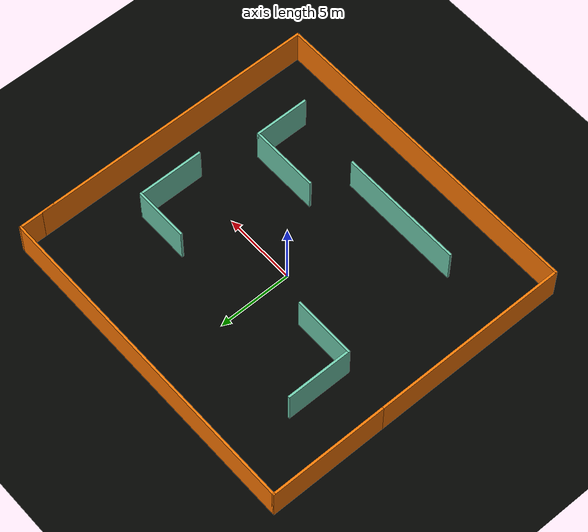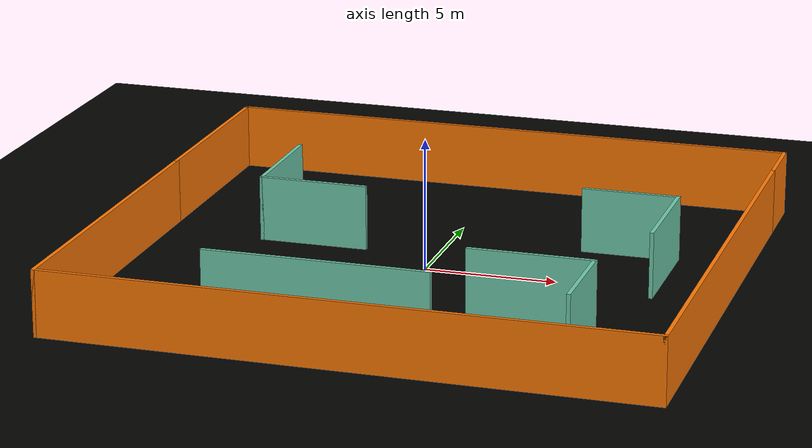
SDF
<sdf version="1.7">
 <world name="default">
  <light name="sun" type="directional">
   <pose>0 0 10 0 -0 0</pose>
   <diffuse>0.8 0.8 0.8 1</diffuse>
   <specular>0.2 0.2 0.2 1</specular>
   <attenuation>
    <range>1000</range>
    <constant>0.9</constant>
    <linear>0.01</linear>
    <quadratic>0.001</quadratic>
   </attenuation>
   <direction>-0.5 0.1 -0.9</direction>
   <spot><inner_angle>0</inner_angle><outer_angle>0</outer_angle><falloff>0</falloff></spot>
  </light>
  <model name="ground_plane">
   <static>1</static>
   <link name="link">
    <collision name="collision">
     <geometry><plane><normal>0 0 1</normal><size>100 100</size></plane></geometry>
     <surface>
      <contact><collide_bitmask>65535</collide_bitmask></contact>
      <friction><ode><mu>100</mu><mu2>50</mu2></ode></friction>
     </surface>
    </collision>
    <visual name="target_visual_1">
     <geometry><sphere><radius>0.5</radius></sphere></geometry>
     <material><ambient>0 1 0 1</ambient><diffuse>1 2 0 1</diffuse></material>
     <pose>0 1 1 0 0 0</pose>
     <cast_shadows>0</cast_shadows>
    </visual>
    <visual name="target_visual_2">
     <geometry><box><size>0.4 0.4 0.4</size></box></geometry>
     <material><ambient>1 0 0 1</ambient><diffuse>1 0 0 1</diffuse></material>
     <pose>0 2 1 0 0 0</pose>
     <cast_shadows>0</cast_shadows>
    </visual>
    <visual name="target_visual_3">
     <geometry><box><size>0.2 0.2 0.4</size></box></geometry>
     <material><ambient>0 0 1 1</ambient><diffuse>1 0 1 1</diffuse></material>
     <pose>-2 0 1 0 0 0</pose>
     <cast_shadows>0</cast_shadows>
    </visual>
    <visual name="visual">
     <cast_shadows>0</cast_shadows>
     <geometry><plane><normal>0 0 1</normal><size>100 100</size></plane></geometry>
     <material>
      <script><uri>file://media/materials/scripts/gazebo.material</uri><name>Gazebo/Grey</name></script>
     </material>
    </visual>
   </link>
  </model>
  <gravity>0 0 -9.8</gravity>
  <magnetic_field>6e-06 2.3e-05 -4.2e-05</magnetic_field>
  <atmosphere type="adiabatic"/>
  <physics type="ode">
   <max_step_size>0.001</max_step_size>
   <real_time_factor>1</real_time_factor>
   <real_time_update_rate>1000</real_time_update_rate>
  </physics>
  <scene><ambient>0.4 0.4 0.4 1</ambient><background>0.7 0.7 0.7 1</background><shadows>1</shadows></scene>
  <spherical_coordinates>
   <surface_model>EARTH_WGS84</surface_model>
   <latitude_deg>0</latitude_deg>
   <longitude_deg>0</longitude_deg>
   <elevation>0</elevation>
   <heading_deg>0</heading_deg>
  </spherical_coordinates>
  <model name="environment">
   <pose>0.29682 -0.173417 0 0 -0 0</pose>
   <link name="Wall_55">
    <collision name="Wall_55_Collision">
     <geometry><box><size>13.5 0.15 2.5</size></box></geometry>
     <pose>0 0 1.25 0 -0 0</pose>
    </collision>
    <visual name="Wall_55_Visual">
     <pose>0 0 1.25 0 -0 0</pose>
     <geometry><box><size>13.5 0.15 2.5</size></box></geometry>
     <material>
      <script><uri>file://media/materials/scripts/gazebo.material</uri><name>Gazebo/Grey</name></script>
      <ambient>0.996078 0.47451 0.0196078 1</ambient>
     </material>
     <meta><layer>0</layer></meta>
    </visual>
    <pose>-11.175 -3.925 0 0 -0 -1.5708</pose>
   </link>
   <link name="Wall_56">
    <collision name="Wall_56_Collision">
     <geometry><box><size>22.5 0.15 2.5</size></box></geometry>
     <pose>0 0 1.25 0 -0 0</pose>
    </collision>
    <visual name="Wall_56_Visual">
     <pose>0 0 1.25 0 -0 0</pose>
     <geometry><box><size>22.5 0.15 2.5</size></box></geometry>
     <material>
      <script><uri>file://media/materials/scripts/gazebo.material</uri><name>Gazebo/Grey</name></script>
      <ambient>0.996078 0.47451 0.0196078 1</ambient>
     </material>
     <meta><layer>0</layer></meta>
    </visual>
    <pose>0 -10.6 0 0 -0 0</pose>
   </link>
   <link name="Wall_57">
    <collision name="Wall_57_Collision">
     <geometry><box><size>19.75 0.15 2.5</size></box></geometry>
     <pose>0 0 1.25 0 -0 0</pose>
    </collision>
    <visual name="Wall_57_Visual">
     <pose>0 0 1.25 0 -0 0</pose>
     <geometry><box><size>19.75 0.15 2.5</size></box></geometry>
     <material>
      <script><uri>file://media/materials/scripts/gazebo.material</uri><name>Gazebo/Grey</name></script>
      <ambient>0.996078 0.47451 0.0196078 1</ambient>
     </material>
     <meta><layer>0</layer></meta>
    </visual>
    <pose>11.175 -0.8 0 0 -0 1.5708</pose>
   </link>
   <link name="Wall_61">
    <collision name="Wall_61_Collision">
     <geometry><box><size>8 0.15 2.5</size></box></geometry>
     <pose>0 0 1.25 0 -0 0</pose>
    </collision>
    <visual name="Wall_61_Visual">
     <pose>0 0 1.25 0 -0 0</pose>
     <geometry><box><size>8 0.15 2.5</size></box></geometry>
     <material>
      <script><uri>file://media/materials/scripts/gazebo.material</uri><name>Gazebo/Grey</name></script>
      <ambient>0.996078 0.47451 0.0196078 1</ambient>
     </material>
     <meta><layer>0</layer></meta>
    </visual>
    <pose>-11.175 6.675 0 0 -0 1.5708</pose>
   </link>
   <link name="Wall_62">
    <collision name="Wall_62_Collision">
     <geometry><box><size>22.5 0.15 2.5</size></box></geometry>
     <pose>0 0 1.25 0 -0 0</pose>
    </collision>
    <visual name="Wall_62_Visual">
     <pose>0 0 1.25 0 -0 0</pose>
     <geometry><box><size>22.5 0.15 2.5</size></box></geometry>
     <material>
      <script><uri>file://media/materials/scripts/gazebo.material</uri><name>Gazebo/Grey</name></script>
      <ambient>0.996078 0.47451 0.0196078 1</ambient>
     </material>
     <meta><layer>0</layer></meta>
    </visual>
    <pose>0 10.6 0 0 -0 0</pose>
   </link>
   <link name="Wall_63">
    <collision name="Wall_63_Collision">
     <geometry><box><size>2.5 0.15 2.5</size></box></geometry>
     <pose>0 0 1.25 0 -0 0</pose>
    </collision>
    <visual name="Wall_63_Visual">
     <pose>0 0 1.25 0 -0 0</pose>
     <geometry><box><size>2.5 0.15 2.5</size></box></geometry>
     <material>
      <script><uri>file://media/materials/scripts/gazebo.material</uri><name>Gazebo/Grey</name></script>
      <ambient>0.996078 0.47451 0.0196078 1</ambient>
     </material>
     <meta><layer>0</layer></meta>
    </visual>
    <pose>11.175 9.425 0 0 -0 -1.5708</pose>
   </link>
   <link name="Wall_65">
    <collision name="Wall_65_Collision">
     <geometry><box><size>4.5 0.15 2.5</size></box></geometry>
     <pose>0 0 1.25 0 -0 0</pose>
    </collision>
    <visual name="Wall_65_Visual">
     <pose>0 0 1.25 0 -0 0</pose>
     <geometry><box><size>4.5 0.15 2.5</size></box></geometry>
     <material>
      <script><uri>file://media/materials/scripts/gazebo.material</uri><name>Gazebo/Grey</name></script>
      <ambient>0.435294 0.796078 0.67451 1</ambient>
     </material>
     <meta><layer>0</layer></meta>
    </visual>
    <pose>-7.28296 3.91589 0 0 -0 -1.5708</pose>
   </link>
   <link name="Wall_66">
    <collision name="Wall_66_Collision">
     <geometry><box><size>4.25 0.15 2.5</size></box></geometry>
     <pose>0 0 1.25 0 -0 0</pose>
    </collision>
    <visual name="Wall_66_Visual">
     <pose>0 0 1.25 0 -0 0</pose>
     <geometry><box><size>4.25 0.15 2.5</size></box></geometry>
     <material>
      <script><uri>file://media/materials/scripts/gazebo.material</uri><name>Gazebo/Grey</name></script>
      <ambient>0.435294 0.796078 0.67451 1</ambient>
     </material>
     <meta><layer>0</layer></meta>
    </visual>
    <pose>-5.23296 1.74089 0 0 -0 0</pose>
   </link>
   <link name="Wall_68">
    <collision name="Wall_68_Collision">
     <geometry><box><size>3.75 0.15 2.5</size></box></geometry>
     <pose>0 0 1.25 0 -0 0</pose>
    </collision>
    <visual name="Wall_68_Visual">
     <pose>0 0 1.25 0 -0 0</pose>
     <geometry><box><size>3.75 0.15 2.5</size></box></geometry>
     <material>
      <script><uri>file://media/materials/scripts/gazebo.material</uri><name>Gazebo/Grey</name></script>
      <ambient>0.435294 0.796078 0.67451 1</ambient>
     </material>
     <meta><layer>0</layer></meta>
    </visual>
    <pose>6.6086 3.89729 0 0 -0 0</pose>
   </link>
   <link name="Wall_69">
    <collision name="Wall_69_Collision">
     <geometry><box><size>4.5 0.15 2.5</size></box></geometry>
     <pose>0 0 1.25 0 -0 0</pose>
    </collision>
    <visual name="Wall_69_Visual">
     <pose>0 0 1.25 0 -0 0</pose>
     <geometry><box><size>4.5 0.15 2.5</size></box></geometry>
     <material>
      <script><uri>file://media/materials/scripts/gazebo.material</uri><name>Gazebo/Grey</name></script>
      <ambient>0.435294 0.796078 0.67451 1</ambient>
     </material>
     <meta><layer>0</layer></meta>
    </visual>
    <pose>8.4086 1.72229 0 0 -0 -1.5708</pose>
   </link>
   <link name="Wall_71">
    <collision name="Wall_71_Collision">
     <geometry><box><size>8.5 0.15 2.5</size></box></geometry>
     <pose>0 0 1.25 0 -0 0</pose>
    </collision>
    <visual name="Wall_71_Visual">
     <pose>0 0 1.25 0 -0 0</pose>
     <geometry><box><size>8.5 0.15 2.5</size></box></geometry>
     <material>
      <script><uri>file://media/materials/scripts/gazebo.material</uri><name>Gazebo/Grey</name></script>
      <ambient>0.435294 0.796078 0.67451 1</ambient>
     </material>
     <meta><layer>0</layer></meta>
    </visual>
    <pose>-2.19842 -6.85672 0 0 -0 0</pose>
   </link>
   <link name="Wall_73">
    <collision name="Wall_73_Collision">
     <geometry><box><size>4.75 0.15 2.5</size></box></geometry>
     <pose>0 0 1.25 0 -0 0</pose>
    </collision>
    <visual name="Wall_73_Visual">
     <pose>0 0 1.25 0 -0 0</pose>
     <geometry><box><size>4.75 0.15 2.5</size></box></geometry>
     <material>
      <script><uri>file://media/materials/scripts/gazebo.material</uri><name>Gazebo/Grey</name></script>
      <ambient>0.435294 0.796078 0.67451 1</ambient>
     </material>
     <meta><layer>0</layer></meta>
    </visual>
    <pose>4.8615 -4.02108 0 0 -0 0</pose>
   </link>
   <link name="Wall_74">
    <collision name="Wall_74_Collision">
     <geometry><box><size>3.75 0.15 2.5</size></box></geometry>
     <pose>0 0 1.25 0 -0 0</pose>
    </collision>
    <visual name="Wall_74_Visual">
     <pose>0 0 1.25 0 -0 0</pose>
     <geometry><box><size>3.75 0.15 2.5</size></box></geometry>
     <material>
      <script><uri>file://media/materials/scripts/gazebo.material</uri><name>Gazebo/Grey</name></script>
      <ambient>0.435294 0.796078 0.67451 1</ambient>
     </material>
     <meta><layer>0</layer></meta>
    </visual>
    <pose>7.1615 -5.82108 0 0 -0 -1.5708</pose>
   </link>
   <static>1</static>
  </model>
 </world>
</sdf>
